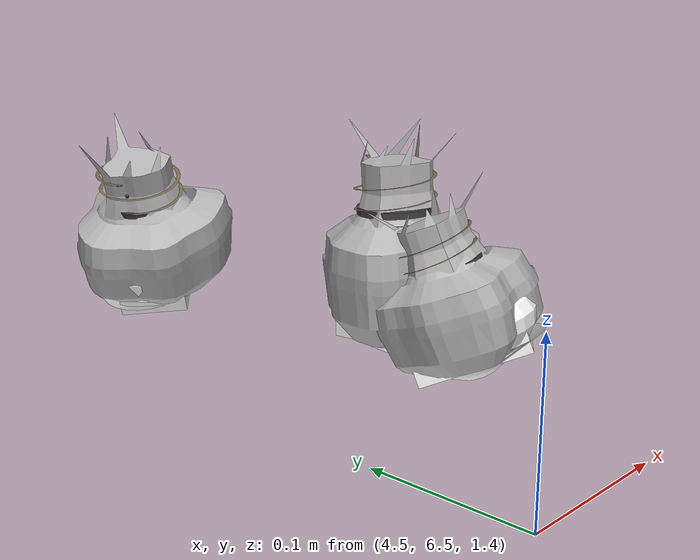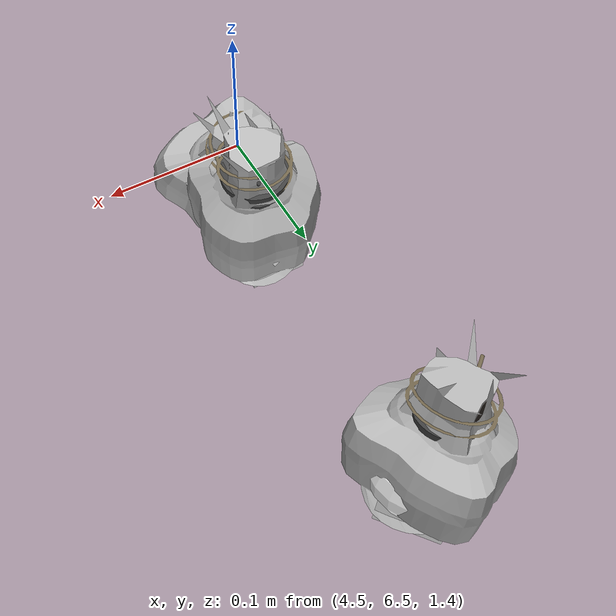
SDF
<sdf version="1.11">
 <world name="peach_orchard">
  <model name="ground">
   <static>true</static>
   <link name="link">
    <visual name="soil">
     <geometry><plane><normal>0 0 1</normal><size>32 22</size></plane></geometry>
     <material>
      <ambient>1 1 1 1</ambient>
      <diffuse>1 1 1 1</diffuse>
      <specular>0.1 0.1 0.1 1</specular>
      <pbr>
       <metal>
        <albedo_map>textures/soil_albedo.png</albedo_map>
        <normal_map type="tangent">textures/soil_normal.png</normal_map>
        <roughness>0.95</roughness>
        <metalness>0</metalness>
       </metal>
      </pbr>
     </material>
    </visual>
    <collision name="c_soil">
     <geometry><plane><normal>0 0 1</normal><size>32 22</size></plane></geometry>
    </collision>
   </link>
  </model>
  <model name="peach_tree_r3_t6_05">
   <pose>4.55 6.81628 1.4357 0 0.285355 -2.77381</pose>
   <static>true</static>
   <link name="bag">
    <visual name="bag_mesh">
     <pose>0 0 0.0437146 0 0 -0</pose>
     <geometry>
      <mesh><uri>model://peach_sim/meshes/bagged_peach.glb</uri><scale>1.08788 1.32671 0.993513</scale></mesh>
     </geometry>
    </visual>
    <visual name="body">
     <pose>0 0 0.0257146 0 0 0</pose>
     <geometry><ellipsoid><radii>0.0407956 0.0344943 0.0277717</radii></ellipsoid></geometry>
     <material>
      <ambient>1 1 1 1</ambient>
      <diffuse>1 1 1 1</diffuse>
      <specular>0.1 0.1 0.1 1</specular>
      <pbr>
       <metal>
        <albedo_map>textures/paper_bag_albedo.png</albedo_map>
        <normal_map type="tangent">textures/paper_bag_normal.png</normal_map>
        <roughness>0.72</roughness>
        <metalness>0</metalness>
       </metal>
      </pbr>
     </material>
    </visual>
    <visual name="bottom_fold">
     <pose>0 0 0.012 0 0 0.35</pose>
     <geometry><box><size>0.0632331 0.0396685 0.022</size></box></geometry>
     <material>
      <ambient>1 1 1 1</ambient>
      <diffuse>1 1 1 1</diffuse>
      <specular>0.1 0.1 0.1 1</specular>
      <pbr>
       <metal>
        <albedo_map>textures/paper_bag_albedo.png</albedo_map>
        <normal_map type="tangent">textures/paper_bag_normal.png</normal_map>
        <roughness>0.8</roughness>
        <metalness>0</metalness>
       </metal>
      </pbr>
     </material>
    </visual>
    <visual name="fruit">
     <pose>0 0 0.0210921 0 0 0</pose>
     <geometry><sphere><radius>0.0281758</radius></sphere></geometry>
     <material>
      <ambient>1 1 1 1</ambient>
      <diffuse>1 1 1 1</diffuse>
      <specular>0.1 0.1 0.1 1</specular>
      <pbr>
       <metal>
        <albedo_map>textures/fruit_skin_albedo.png</albedo_map>
        <normal_map type="tangent">textures/fruit_skin_normal.png</normal_map>
        <roughness>0.55</roughness>
        <metalness>0</metalness>
       </metal>
      </pbr>
     </material>
    </visual>
    <visual name="neck">
     <pose>0 0 0.0604292 0 0 0</pose>
     <geometry><cylinder><radius>0.013</radius><length>0.018</length></cylinder></geometry>
     <material>
      <ambient>1 1 1 1</ambient>
      <diffuse>1 1 1 1</diffuse>
      <specular>0.1 0.1 0.1 1</specular>
      <pbr>
       <metal>
        <albedo_map>textures/paper_bag_albedo.png</albedo_map>
        <normal_map type="tangent">textures/paper_bag_normal.png</normal_map>
        <roughness>0.75</roughness>
        <metalness>0</metalness>
       </metal>
      </pbr>
     </material>
    </visual>
    <visual name="gather">
     <pose>0 0 0.0414292 0 0 0</pose>
     <geometry><cylinder><radius>0.019</radius><length>0.02</length></cylinder></geometry>
     <material>
      <ambient>1 1 1 1</ambient>
      <diffuse>1 1 1 1</diffuse>
      <specular>0.1 0.1 0.1 1</specular>
      <pbr>
       <metal>
        <albedo_map>textures/paper_bag_albedo.png</albedo_map>
        <normal_map type="tangent">textures/paper_bag_normal.png</normal_map>
        <roughness>0.8</roughness>
        <metalness>0</metalness>
       </metal>
      </pbr>
     </material>
    </visual>
    <visual name="inner_paper">
     <pose>0 0 0.0654292 0 0 0</pose>
     <geometry><cylinder><radius>0.01</radius><length>0.008</length></cylinder></geometry>
     <material>
      <ambient>0.180392 0.14902 0.133333 1</ambient>
      <diffuse>0.180392 0.14902 0.133333 1</diffuse>
      <specular>0.1 0.1 0.1 1</specular>
     </material>
    </visual>
    <visual name="wire_0">
     <pose>0 0 0.0554292 0 0 0</pose>
     <geometry><cylinder><radius>0.0205</radius><length>0.0035</length></cylinder></geometry>
     <material>
      <ambient>0.25 0.25 0.25 1</ambient>
      <diffuse>0.25 0.25 0.25 1</diffuse>
      <specular>0.1 0.1 0.1 1</specular>
     </material>
    </visual>
    <visual name="wire_1">
     <pose>0 0 0.0624292 0 0 0</pose>
     <geometry><cylinder><radius>0.0205</radius><length>0.0035</length></cylinder></geometry>
     <material>
      <ambient>0.25 0.25 0.25 1</ambient>
      <diffuse>0.25 0.25 0.25 1</diffuse>
      <specular>0.1 0.1 0.1 1</specular>
     </material>
    </visual>
    <visual name="wire_tail">
     <pose>0.01 0 0.0634292 0 0.521618 0</pose>
     <geometry><cylinder><radius>0.0012</radius><length>0.026</length></cylinder></geometry>
     <material>
      <ambient>0.25 0.25 0.25 1</ambient>
      <diffuse>0.25 0.25 0.25 1</diffuse>
      <specular>0.1 0.1 0.1 1</specular>
     </material>
    </visual>
    <collision name="c_body">
     <pose>0 0 0.0257146 0 0 0</pose>
     <geometry><cylinder><radius>0.0407956</radius><length>0.0514292</length></cylinder></geometry>
    </collision>
   </link>
  </model>
  <model name="peach_tree_r3_t6_06">
   <pose>4.55 6.62383 1.45 0 0.0770276 1.22788</pose>
   <static>true</static>
   <link name="bag">
    <visual name="bag_mesh">
     <pose>0 0 0.0479558 0 0 0</pose>
     <geometry>
      <mesh><uri>model://peach_sim/meshes/bagged_peach.glb</uri><scale>1.01184 1.15445 1.0899</scale></mesh>
     </geometry>
    </visual>
    <visual name="body">
     <pose>0 0 0.0299558 0 0 0</pose>
     <geometry><ellipsoid><radii>0.0379442 0.0300157 0.0323523</radii></ellipsoid></geometry>
     <material>
      <ambient>1 1 1 1</ambient>
      <diffuse>1 1 1 1</diffuse>
      <specular>0.1 0.1 0.1 1</specular>
      <pbr>
       <metal>
        <albedo_map>textures/paper_bag_albedo.png</albedo_map>
        <normal_map type="tangent">textures/paper_bag_normal.png</normal_map>
        <roughness>0.72</roughness>
        <metalness>0</metalness>
       </metal>
      </pbr>
     </material>
    </visual>
    <visual name="bottom_fold">
     <pose>0 0 0.012 0 0 0.35</pose>
     <geometry><box><size>0.0588135 0.0345181 0.022</size></box></geometry>
     <material>
      <ambient>1 1 1 1</ambient>
      <diffuse>1 1 1 1</diffuse>
      <specular>0.1 0.1 0.1 1</specular>
      <pbr>
       <metal>
        <albedo_map>textures/paper_bag_albedo.png</albedo_map>
        <normal_map type="tangent">textures/paper_bag_normal.png</normal_map>
        <roughness>0.8</roughness>
        <metalness>0</metalness>
       </metal>
      </pbr>
     </material>
    </visual>
    <visual name="fruit">
     <pose>0 0 0.0206597 0 0 0</pose>
     <geometry><sphere><radius>0.0277261</radius></sphere></geometry>
     <material>
      <ambient>1 1 1 1</ambient>
      <diffuse>1 1 1 1</diffuse>
      <specular>0.1 0.1 0.1 1</specular>
      <pbr>
       <metal>
        <albedo_map>textures/fruit_skin_albedo.png</albedo_map>
        <normal_map type="tangent">textures/fruit_skin_normal.png</normal_map>
        <roughness>0.55</roughness>
        <metalness>0</metalness>
       </metal>
      </pbr>
     </material>
    </visual>
    <visual name="neck">
     <pose>0 0 0.0689116 0 0 0</pose>
     <geometry><cylinder><radius>0.013</radius><length>0.018</length></cylinder></geometry>
     <material>
      <ambient>1 1 1 1</ambient>
      <diffuse>1 1 1 1</diffuse>
      <specular>0.1 0.1 0.1 1</specular>
      <pbr>
       <metal>
        <albedo_map>textures/paper_bag_albedo.png</albedo_map>
        <normal_map type="tangent">textures/paper_bag_normal.png</normal_map>
        <roughness>0.75</roughness>
        <metalness>0</metalness>
       </metal>
      </pbr>
     </material>
    </visual>
    <visual name="gather">
     <pose>0 0 0.0499116 0 0 0</pose>
     <geometry><cylinder><radius>0.019</radius><length>0.02</length></cylinder></geometry>
     <material>
      <ambient>1 1 1 1</ambient>
      <diffuse>1 1 1 1</diffuse>
      <specular>0.1 0.1 0.1 1</specular>
      <pbr>
       <metal>
        <albedo_map>textures/paper_bag_albedo.png</albedo_map>
        <normal_map type="tangent">textures/paper_bag_normal.png</normal_map>
        <roughness>0.8</roughness>
        <metalness>0</metalness>
       </metal>
      </pbr>
     </material>
    </visual>
    <visual name="inner_paper">
     <pose>0 0 0.0739116 0 0 0</pose>
     <geometry><cylinder><radius>0.01</radius><length>0.008</length></cylinder></geometry>
     <material>
      <ambient>0.180392 0.14902 0.133333 1</ambient>
      <diffuse>0.180392 0.14902 0.133333 1</diffuse>
      <specular>0.1 0.1 0.1 1</specular>
     </material>
    </visual>
    <visual name="wire_0">
     <pose>0 0 0.0639116 0 0 0</pose>
     <geometry><cylinder><radius>0.0205</radius><length>0.0035</length></cylinder></geometry>
     <material>
      <ambient>0.25 0.25 0.25 1</ambient>
      <diffuse>0.25 0.25 0.25 1</diffuse>
      <specular>0.1 0.1 0.1 1</specular>
     </material>
    </visual>
    <visual name="wire_1">
     <pose>0 0 0.0709116 0 0 0</pose>
     <geometry><cylinder><radius>0.0205</radius><length>0.0035</length></cylinder></geometry>
     <material>
      <ambient>0.25 0.25 0.25 1</ambient>
      <diffuse>0.25 0.25 0.25 1</diffuse>
      <specular>0.1 0.1 0.1 1</specular>
     </material>
    </visual>
    <visual name="wire_tail">
     <pose>0.01 0 0.0719116 0 0.521618 0</pose>
     <geometry><cylinder><radius>0.0012</radius><length>0.026</length></cylinder></geometry>
     <material>
      <ambient>0.25 0.25 0.25 1</ambient>
      <diffuse>0.25 0.25 0.25 1</diffuse>
      <specular>0.1 0.1 0.1 1</specular>
     </material>
    </visual>
    <collision name="c_body">
     <pose>0 0 0.0299558 0 0 0</pose>
     <geometry><cylinder><radius>0.0379442</radius><length>0.0599116</length></cylinder></geometry>
    </collision>
   </link>
  </model>
  <model name="peach_tree_r3_t6_07">
   <pose>4.55 6.57251 1.45 0 0.377772 1.8732</pose>
   <static>true</static>
   <link name="bag">
    <visual name="bag_mesh">
     <pose>0 0 0.038473 0 0 0</pose>
     <geometry>
      <mesh><uri>model://peach_sim/meshes/bagged_peach.glb</uri><scale>1.02924 1.20887 0.874387</scale></mesh>
     </geometry>
    </visual>
    <visual name="body">
     <pose>0 0 0.020473 0 0 0</pose>
     <geometry><ellipsoid><radii>0.0385967 0.0314306 0.0221109</radii></ellipsoid></geometry>
     <material>
      <ambient>1 1 1 1</ambient>
      <diffuse>1 1 1 1</diffuse>
      <specular>0.1 0.1 0.1 1</specular>
      <pbr>
       <metal>
        <albedo_map>textures/paper_bag_albedo.png</albedo_map>
        <normal_map type="tangent">textures/paper_bag_normal.png</normal_map>
        <roughness>0.72</roughness>
        <metalness>0</metalness>
       </metal>
      </pbr>
     </material>
    </visual>
    <visual name="bottom_fold">
     <pose>0 0 0.012 0 0 0.35</pose>
     <geometry><box><size>0.0598248 0.0361452 0.022</size></box></geometry>
     <material>
      <ambient>1 1 1 1</ambient>
      <diffuse>1 1 1 1</diffuse>
      <specular>0.1 0.1 0.1 1</specular>
      <pbr>
       <metal>
        <albedo_map>textures/paper_bag_albedo.png</albedo_map>
        <normal_map type="tangent">textures/paper_bag_normal.png</normal_map>
        <roughness>0.8</roughness>
        <metalness>0</metalness>
       </metal>
      </pbr>
     </material>
    </visual>
    <visual name="fruit">
     <pose>0 0 0.0201612 0 0 0</pose>
     <geometry><sphere><radius>0.0272076</radius></sphere></geometry>
     <material>
      <ambient>1 1 1 1</ambient>
      <diffuse>1 1 1 1</diffuse>
      <specular>0.1 0.1 0.1 1</specular>
      <pbr>
       <metal>
        <albedo_map>textures/fruit_skin_albedo.png</albedo_map>
        <normal_map type="tangent">textures/fruit_skin_normal.png</normal_map>
        <roughness>0.55</roughness>
        <metalness>0</metalness>
       </metal>
      </pbr>
     </material>
    </visual>
    <visual name="neck">
     <pose>0 0 0.0499461 0 0 0</pose>
     <geometry><cylinder><radius>0.013</radius><length>0.018</length></cylinder></geometry>
     <material>
      <ambient>1 1 1 1</ambient>
      <diffuse>1 1 1 1</diffuse>
      <specular>0.1 0.1 0.1 1</specular>
      <pbr>
       <metal>
        <albedo_map>textures/paper_bag_albedo.png</albedo_map>
        <normal_map type="tangent">textures/paper_bag_normal.png</normal_map>
        <roughness>0.75</roughness>
        <metalness>0</metalness>
       </metal>
      </pbr>
     </material>
    </visual>
    <visual name="gather">
     <pose>0 0 0.0309461 0 0 0</pose>
     <geometry><cylinder><radius>0.019</radius><length>0.02</length></cylinder></geometry>
     <material>
      <ambient>1 1 1 1</ambient>
      <diffuse>1 1 1 1</diffuse>
      <specular>0.1 0.1 0.1 1</specular>
      <pbr>
       <metal>
        <albedo_map>textures/paper_bag_albedo.png</albedo_map>
        <normal_map type="tangent">textures/paper_bag_normal.png</normal_map>
        <roughness>0.8</roughness>
        <metalness>0</metalness>
       </metal>
      </pbr>
     </material>
    </visual>
    <visual name="inner_paper">
     <pose>0 0 0.0549461 0 0 0</pose>
     <geometry><cylinder><radius>0.01</radius><length>0.008</length></cylinder></geometry>
     <material>
      <ambient>0.180392 0.14902 0.133333 1</ambient>
      <diffuse>0.180392 0.14902 0.133333 1</diffuse>
      <specular>0.1 0.1 0.1 1</specular>
     </material>
    </visual>
    <visual name="wire_0">
     <pose>0 0 0.0449461 0 0 0</pose>
     <geometry><cylinder><radius>0.0205</radius><length>0.0035</length></cylinder></geometry>
     <material>
      <ambient>0.25 0.25 0.25 1</ambient>
      <diffuse>0.25 0.25 0.25 1</diffuse>
      <specular>0.1 0.1 0.1 1</specular>
     </material>
    </visual>
    <visual name="wire_1">
     <pose>0 0 0.0519461 0 0 0</pose>
     <geometry><cylinder><radius>0.0205</radius><length>0.0035</length></cylinder></geometry>
     <material>
      <ambient>0.25 0.25 0.25 1</ambient>
      <diffuse>0.25 0.25 0.25 1</diffuse>
      <specular>0.1 0.1 0.1 1</specular>
     </material>
    </visual>
    <visual name="wire_tail">
     <pose>0.01 0 0.0529461 0 0.521618 0</pose>
     <geometry><cylinder><radius>0.0012</radius><length>0.026</length></cylinder></geometry>
     <material>
      <ambient>0.25 0.25 0.25 1</ambient>
      <diffuse>0.25 0.25 0.25 1</diffuse>
      <specular>0.1 0.1 0.1 1</specular>
     </material>
    </visual>
    <collision name="c_body">
     <pose>0 0 0.020473 0 0 0</pose>
     <geometry><cylinder><radius>0.0385967</radius><length>0.0409461</length></cylinder></geometry>
    </collision>
   </link>
  </model>
 </world>
</sdf>
